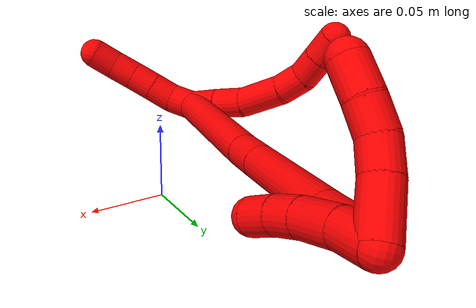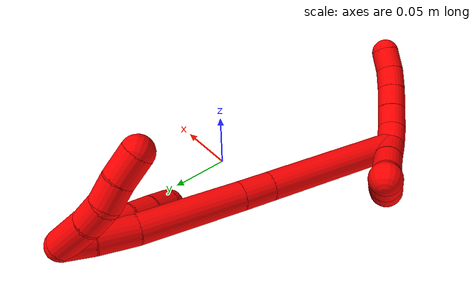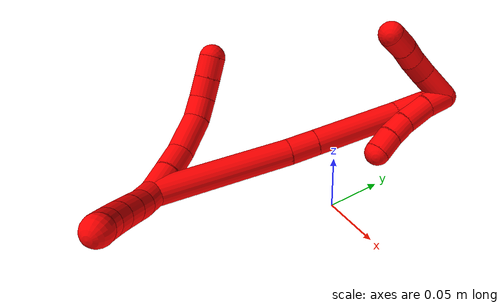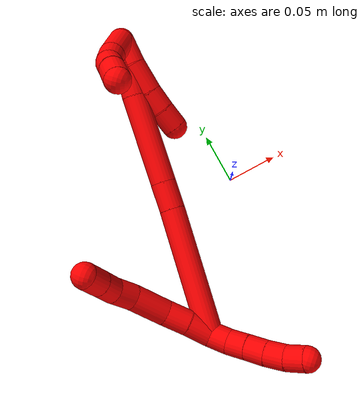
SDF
<sdf version="1.7">
 <world name="default">
  <model name="photoneo_s_sensor">
   <static>1</static>
   <pose>0 0 2 1.57079 1.57079 3.14159</pose>
   <link name="link">
    <inertial><mass>0.1</mass></inertial>
    <sensor name="sensor" type="depth">
     <update_rate>30</update_rate>
     <camera>
      <horizontal_fov>1.22</horizontal_fov>
      <image><width>1920</width><height>1200</height><format>B8G8R8</format></image>
      <clip><near>0.1</near><far>4</far></clip>
      <depth_camera><output>points</output></depth_camera>
     </camera>
     <plugin name="camera_plugin" filename="libgazebo_ros_depth_camera.so">
      <baseline>0.2</baseline>
      <alwaysOn>1</alwaysOn>
      <updateRate>0.0</updateRate>
      <cameraName>camera_ir</cameraName>
      <imageTopicName>/camera/color/image_raw</imageTopicName>
      <cameraInfoTopicName>/camera/color/camera_info</cameraInfoTopicName>
      <depthImageTopicName>/camera/depth/image_raw</depthImageTopicName>
      <depthImageCameraInfoTopicName>/camera/depth/camera_info</depthImageCameraInfoTopicName>
      <pointCloudTopicName>/camera/depth/points</pointCloudTopicName>
      <frameName>fr_optical</frameName>
      <pointCloudCutoff>0.1</pointCloudCutoff>
      <pointCloudCutoffMax>2.0</pointCloudCutoffMax>
      <distortionK1>0</distortionK1>
      <distortionK2>0</distortionK2>
      <distortionK3>0</distortionK3>
      <distortionT1>0</distortionT1>
      <distortionT2>0</distortionT2>
      <CxPrime>0</CxPrime>
      <Cx>0</Cx>
      <Cy>0</Cy>
      <focalLength>0</focalLength>
      <hackBaseline>0</hackBaseline>
     </plugin>
    </sensor>
   </link>
  </model>
  <model name="bin">
   <static>1</static>
   <link name="bottom">
    <collision name="collision-bottom">
     <pose>0 0 -0.01 0 -0 0</pose>
     <geometry><box><size>0.8 0.6 0.02</size></box></geometry>
     <surface>
      <friction><ode><mu>100</mu><mu2>100</mu2></ode></friction>
      <contact><collide_bitmask>65535</collide_bitmask></contact>
     </surface>
    </collision>
   </link>
   <link name="west_wall">
    <collision name="collision-west_wall">
     <pose>-0.41 0 0.1 0 -0 0</pose>
     <geometry><box><size>0.02 0.6 0.2</size></box></geometry>
     <surface>
      <friction><ode><mu>100</mu><mu2>100</mu2></ode></friction>
      <contact><collide_bitmask>65535</collide_bitmask></contact>
     </surface>
    </collision>
   </link>
   <link name="east_wall">
    <collision name="collision-east_wall">
     <pose>0.41 0 0.1 0 -0 0</pose>
     <geometry><box><size>0.02 0.6 0.2</size></box></geometry>
     <surface>
      <friction><ode><mu>100</mu><mu2>100</mu2></ode></friction>
      <contact><collide_bitmask>65535</collide_bitmask></contact>
     </surface>
    </collision>
   </link>
   <link name="south_wall">
    <collision name="collision-south_wall">
     <pose>0 -0.31 0.1 0 -0 0</pose>
     <geometry><box><size>0.8 0.02 0.2</size></box></geometry>
     <surface>
      <friction><ode><mu>100</mu><mu2>100</mu2></ode></friction>
      <contact><collide_bitmask>65535</collide_bitmask></contact>
     </surface>
    </collision>
   </link>
   <link name="north_wall">
    <collision name="collision-north_wall">
     <pose>0 0.31 0.1 0 -0 0</pose>
     <geometry><box><size>0.8 0.02 0.2</size></box></geometry>
     <surface>
      <friction><ode><mu>100</mu><mu2>100</mu2></ode></friction>
      <contact><collide_bitmask>65535</collide_bitmask></contact>
     </surface>
    </collision>
   </link>
  </model>
  <model name="2">
   <static>0</static>
   <link name="2">
    <collision name="collision-cylinder-e_1_2_8">
     <pose>-0.004368 0.002054 -0.011496 -2.96483 -0.357926 2.23061</pose>
     <geometry><cylinder><radius>0.0125</radius><length>0.024937</length></cylinder></geometry>
     <surface>
      <friction><ode><mu>1.16</mu><mu2>1.16</mu2><slip1>0</slip1><slip2>0</slip2></ode></friction>
      <contact><ode><kp>1e+06</kp><kd>1</kd><max_vel>0</max_vel><min_depth>0.001</min_depth></ode></contact>
     </surface>
    </collision>
    <visual name="visual-cylinder-e_1_2_8">
     <pose>-0.004368 0.002054 -0.011496 -2.96483 -0.357926 2.23061</pose>
     <geometry><cylinder><radius>0.0125</radius><length>0.024937</length></cylinder></geometry>
     <material><ambient>1 0 0 1</ambient></material>
    </visual>
    <collision name="collision-cylinder-e_2_8_9">
     <pose>-0.012511 0.005472 -0.03444 -3.02288 -0.316395 2.42841</pose>
     <geometry><cylinder><radius>0.0125</radius><length>0.024262</length></cylinder></geometry>
     <surface>
      <friction><ode><mu>1.16</mu><mu2>1.16</mu2><slip1>0</slip1><slip2>0</slip2></ode></friction>
      <contact><ode><kp>1e+06</kp><kd>1</kd><max_vel>0</max_vel><min_depth>0.001</min_depth></ode></contact>
     </surface>
    </collision>
    <visual name="visual-cylinder-e_2_8_9">
     <pose>-0.012511 0.005472 -0.03444 -3.02288 -0.316395 2.42841</pose>
     <geometry><cylinder><radius>0.0125</radius><length>0.024262</length></cylinder></geometry>
     <material><ambient>1 0 0 1</ambient></material>
    </visual>
    <collision name="collision-cylinder-e_3_9_10">
     <pose>-0.026316 0.010106 -0.061061 -2.92948 -0.573725 2.44895</pose>
     <geometry><cylinder><radius>0.0125</radius><length>0.036961</length></cylinder></geometry>
     <surface>
      <friction><ode><mu>1.16</mu><mu2>1.16</mu2><slip1>0</slip1><slip2>0</slip2></ode></friction>
      <contact><ode><kp>1e+06</kp><kd>1</kd><max_vel>0</max_vel><min_depth>0.001</min_depth></ode></contact>
     </surface>
    </collision>
    <visual name="visual-cylinder-e_3_9_10">
     <pose>-0.026316 0.010106 -0.061061 -2.92948 -0.573725 2.44895</pose>
     <geometry><cylinder><radius>0.0125</radius><length>0.036961</length></cylinder></geometry>
     <material><ambient>1 0 0 1</ambient></material>
    </visual>
    <collision name="collision-cylinder-e_4_10_11">
     <pose>-0.044122 0.014516 -0.083958 -2.99473 -0.783382 2.78908</pose>
     <geometry><cylinder><radius>0.0125</radius><length>0.022037</length></cylinder></geometry>
     <surface>
      <friction><ode><mu>1.16</mu><mu2>1.16</mu2><slip1>0</slip1><slip2>0</slip2></ode></friction>
      <contact><ode><kp>1e+06</kp><kd>1</kd><max_vel>0</max_vel><min_depth>0.001</min_depth></ode></contact>
     </surface>
    </collision>
    <visual name="visual-cylinder-e_4_10_11">
     <pose>-0.044122 0.014516 -0.083958 -2.99473 -0.783382 2.78908</pose>
     <geometry><cylinder><radius>0.0125</radius><length>0.022037</length></cylinder></geometry>
     <material><ambient>1 0 0 1</ambient></material>
    </visual>
    <collision name="collision-cylinder-e_5_11_12">
     <pose>-0.060901 0.018113 -0.096164 -2.64056 -1.05443 2.31336</pose>
     <geometry><cylinder><radius>0.0125</radius><length>0.020706</length></cylinder></geometry>
     <surface>
      <friction><ode><mu>1.16</mu><mu2>1.16</mu2><slip1>0</slip1><slip2>0</slip2></ode></friction>
      <contact><ode><kp>1e+06</kp><kd>1</kd><max_vel>0</max_vel><min_depth>0.001</min_depth></ode></contact>
     </surface>
    </collision>
    <visual name="visual-cylinder-e_5_11_12">
     <pose>-0.060901 0.018113 -0.096164 -2.64056 -1.05443 2.31336</pose>
     <geometry><cylinder><radius>0.0125</radius><length>0.020706</length></cylinder></geometry>
     <material><ambient>1 0 0 1</ambient></material>
    </visual>
    <collision name="collision-cylinder-e_6_12_6">
     <pose>-0.079122 0.022964 -0.105181 -2.65549 -1.0632 2.34356</pose>
     <geometry><cylinder><radius>0.0125</radius><length>0.021097</length></cylinder></geometry>
     <surface>
      <friction><ode><mu>1.16</mu><mu2>1.16</mu2><slip1>0</slip1><slip2>0</slip2></ode></friction>
      <contact><ode><kp>1e+06</kp><kd>1</kd><max_vel>0</max_vel><min_depth>0.001</min_depth></ode></contact>
     </surface>
    </collision>
    <visual name="visual-cylinder-e_6_12_6">
     <pose>-0.079122 0.022964 -0.105181 -2.65549 -1.0632 2.34356</pose>
     <geometry><cylinder><radius>0.0125</radius><length>0.021097</length></cylinder></geometry>
     <material><ambient>1 0 0 1</ambient></material>
    </visual>
    <collision name="collision-cylinder-e_1_2_13">
     <pose>-0.000752 -0.000183 0.00997 0.0184 -0.075261 -0.000693</pose>
     <geometry><cylinder><radius>0.0125</radius><length>0.02</length></cylinder></geometry>
     <surface>
      <friction><ode><mu>1.16</mu><mu2>1.16</mu2><slip1>0</slip1><slip2>0</slip2></ode></friction>
      <contact><ode><kp>1e+06</kp><kd>1</kd><max_vel>0</max_vel><min_depth>0.001</min_depth></ode></contact>
     </surface>
    </collision>
    <visual name="visual-cylinder-e_1_2_13">
     <pose>-0.000752 -0.000183 0.00997 0.0184 -0.075261 -0.000693</pose>
     <geometry><cylinder><radius>0.0125</radius><length>0.02</length></cylinder></geometry>
     <material><ambient>1 0 0 1</ambient></material>
    </visual>
    <collision name="collision-cylinder-e_2_13_14">
     <pose>-0.004593 0.000864 0.029371 -0.129783 -0.314107 0.02058</pose>
     <geometry><cylinder><radius>0.0125</radius><length>0.02</length></cylinder></geometry>
     <surface>
      <friction><ode><mu>1.16</mu><mu2>1.16</mu2><slip1>0</slip1><slip2>0</slip2></ode></friction>
      <contact><ode><kp>1e+06</kp><kd>1</kd><max_vel>0</max_vel><min_depth>0.001</min_depth></ode></contact>
     </surface>
    </collision>
    <visual name="visual-cylinder-e_2_13_14">
     <pose>-0.004593 0.000864 0.029371 -0.129783 -0.314107 0.02058</pose>
     <geometry><cylinder><radius>0.0125</radius><length>0.02</length></cylinder></geometry>
     <material><ambient>1 0 0 1</ambient></material>
    </visual>
    <collision name="collision-cylinder-e_3_14_15">
     <pose>-0.01062 0.003162 0.048301 -0.111829 -0.298065 0.016808</pose>
     <geometry><cylinder><radius>0.0125</radius><length>0.02</length></cylinder></geometry>
     <surface>
      <friction><ode><mu>1.16</mu><mu2>1.16</mu2><slip1>0</slip1><slip2>0</slip2></ode></friction>
      <contact><ode><kp>1e+06</kp><kd>1</kd><max_vel>0</max_vel><min_depth>0.001</min_depth></ode></contact>
     </surface>
    </collision>
    <visual name="visual-cylinder-e_3_14_15">
     <pose>-0.01062 0.003162 0.048301 -0.111829 -0.298065 0.016808</pose>
     <geometry><cylinder><radius>0.0125</radius><length>0.02</length></cylinder></geometry>
     <material><ambient>1 0 0 1</ambient></material>
    </visual>
    <collision name="collision-cylinder-e_4_15_16">
     <pose>-0.016589 0.006049 0.067154 -0.192292 -0.308108 0.02995</pose>
     <geometry><cylinder><radius>0.0125</radius><length>0.02</length></cylinder></geometry>
     <surface>
      <friction><ode><mu>1.16</mu><mu2>1.16</mu2><slip1>0</slip1><slip2>0</slip2></ode></friction>
      <contact><ode><kp>1e+06</kp><kd>1</kd><max_vel>0</max_vel><min_depth>0.001</min_depth></ode></contact>
     </surface>
    </collision>
    <visual name="visual-cylinder-e_4_15_16">
     <pose>-0.016589 0.006049 0.067154 -0.192292 -0.308108 0.02995</pose>
     <geometry><cylinder><radius>0.0125</radius><length>0.02</length></cylinder></geometry>
     <material><ambient>1 0 0 1</ambient></material>
    </visual>
    <collision name="collision-cylinder-e_5_16_5">
     <pose>-0.023268 0.011293 0.085167 -0.376351 -0.373285 0.07189</pose>
     <geometry><cylinder><radius>0.0125</radius><length>0.02</length></cylinder></geometry>
     <surface>
      <friction><ode><mu>1.16</mu><mu2>1.16</mu2><slip1>0</slip1><slip2>0</slip2></ode></friction>
      <contact><ode><kp>1e+06</kp><kd>1</kd><max_vel>0</max_vel><min_depth>0.001</min_depth></ode></contact>
     </surface>
    </collision>
    <visual name="visual-cylinder-e_5_16_5">
     <pose>-0.023268 0.011293 0.085167 -0.376351 -0.373285 0.07189</pose>
     <geometry><cylinder><radius>0.0125</radius><length>0.02</length></cylinder></geometry>
     <material><ambient>1 0 0 1</ambient></material>
    </visual>
    <collision name="collision-cylinder-e_1_2_17">
     <pose>-0.002105 0.050962 -0.037029 -2.19915 -0.033404 0.065544</pose>
     <geometry><cylinder><radius>0.0125</radius><length>0.126057</length></cylinder></geometry>
     <surface>
      <friction><ode><mu>1.16</mu><mu2>1.16</mu2><slip1>0</slip1><slip2>0</slip2></ode></friction>
      <contact><ode><kp>1e+06</kp><kd>1</kd><max_vel>0</max_vel><min_depth>0.001</min_depth></ode></contact>
     </surface>
    </collision>
    <visual name="visual-cylinder-e_1_2_17">
     <pose>-0.002105 0.050962 -0.037029 -2.19915 -0.033404 0.065544</pose>
     <geometry><cylinder><radius>0.0125</radius><length>0.126057</length></cylinder></geometry>
     <material><ambient>1 0 0 1</ambient></material>
    </visual>
    <collision name="collision-cylinder-e_2_17_18">
     <pose>-0.005199 0.113013 -0.082455 -2.21895 -0.070943 0.142532</pose>
     <geometry><cylinder><radius>0.0125</radius><length>0.027891</length></cylinder></geometry>
     <surface>
      <friction><ode><mu>1.16</mu><mu2>1.16</mu2><slip1>0</slip1><slip2>0</slip2></ode></friction>
      <contact><ode><kp>1e+06</kp><kd>1</kd><max_vel>0</max_vel><min_depth>0.001</min_depth></ode></contact>
     </surface>
    </collision>
    <visual name="visual-cylinder-e_2_17_18">
     <pose>-0.005199 0.113013 -0.082455 -2.21895 -0.070943 0.142532</pose>
     <geometry><cylinder><radius>0.0125</radius><length>0.027891</length></cylinder></geometry>
     <material><ambient>1 0 0 1</ambient></material>
    </visual>
    <collision name="collision-cylinder-e_3_18_19">
     <pose>-0.009689 0.159839 -0.117556 -2.2125 -0.078337 0.156085</pose>
     <geometry><cylinder><radius>0.0125</radius><length>0.089498</length></cylinder></geometry>
     <surface>
      <friction><ode><mu>1.16</mu><mu2>1.16</mu2><slip1>0</slip1><slip2>0</slip2></ode></friction>
      <contact><ode><kp>1e+06</kp><kd>1</kd><max_vel>0</max_vel><min_depth>0.001</min_depth></ode></contact>
     </surface>
    </collision>
    <visual name="visual-cylinder-e_3_18_19">
     <pose>-0.009689 0.159839 -0.117556 -2.2125 -0.078337 0.156085</pose>
     <geometry><cylinder><radius>0.0125</radius><length>0.089498</length></cylinder></geometry>
     <material><ambient>1 0 0 1</ambient></material>
    </visual>
    <collision name="collision-cylinder-e_4_19_20">
     <pose>-0.015372 0.20932 -0.153229 -2.14902 -0.132143 0.243185</pose>
     <geometry><cylinder><radius>0.0125</radius><length>0.033112</length></cylinder></geometry>
     <surface>
      <friction><ode><mu>1.16</mu><mu2>1.16</mu2><slip1>0</slip1><slip2>0</slip2></ode></friction>
      <contact><ode><kp>1e+06</kp><kd>1</kd><max_vel>0</max_vel><min_depth>0.001</min_depth></ode></contact>
     </surface>
    </collision>
    <visual name="visual-cylinder-e_4_19_20">
     <pose>-0.015372 0.20932 -0.153229 -2.14902 -0.132143 0.243185</pose>
     <geometry><cylinder><radius>0.0125</radius><length>0.033112</length></cylinder></geometry>
     <material><ambient>1 0 0 1</ambient></material>
    </visual>
    <collision name="collision-cylinder-e_5_20_1">
     <pose>-0.019087 0.233274 -0.167746 -2.06857 -0.131218 0.220071</pose>
     <geometry><cylinder><radius>0.0125</radius><length>0.023441</length></cylinder></geometry>
     <surface>
      <friction><ode><mu>1.16</mu><mu2>1.16</mu2><slip1>0</slip1><slip2>0</slip2></ode></friction>
      <contact><ode><kp>1e+06</kp><kd>1</kd><max_vel>0</max_vel><min_depth>0.001</min_depth></ode></contact>
     </surface>
    </collision>
    <visual name="visual-cylinder-e_5_20_1">
     <pose>-0.019087 0.233274 -0.167746 -2.06857 -0.131218 0.220071</pose>
     <geometry><cylinder><radius>0.0125</radius><length>0.023441</length></cylinder></geometry>
     <material><ambient>1 0 0 1</ambient></material>
    </visual>
    <collision name="collision-cylinder-e_1_1_21">
     <pose>-0.018821 0.233904 -0.164267 0.81506 0.135873 0.05873</pose>
     <geometry><cylinder><radius>0.0125</radius><length>0.026572</length></cylinder></geometry>
     <surface>
      <friction><ode><mu>1.16</mu><mu2>1.16</mu2><slip1>0</slip1><slip2>0</slip2></ode></friction>
      <contact><ode><kp>1e+06</kp><kd>1</kd><max_vel>0</max_vel><min_depth>0.001</min_depth></ode></contact>
     </surface>
    </collision>
    <visual name="visual-cylinder-e_1_1_21">
     <pose>-0.018821 0.233904 -0.164267 0.81506 0.135873 0.05873</pose>
     <geometry><cylinder><radius>0.0125</radius><length>0.026572</length></cylinder></geometry>
     <material><ambient>1 0 0 1</ambient></material>
    </visual>
    <collision name="collision-cylinder-e_2_21_22">
     <pose>-0.012827 0.214424 -0.144305 0.735803 0.277069 0.107382</pose>
     <geometry><cylinder><radius>0.0125</radius><length>0.03067</length></cylinder></geometry>
     <surface>
      <friction><ode><mu>1.16</mu><mu2>1.16</mu2><slip1>0</slip1><slip2>0</slip2></ode></friction>
      <contact><ode><kp>1e+06</kp><kd>1</kd><max_vel>0</max_vel><min_depth>0.001</min_depth></ode></contact>
     </surface>
    </collision>
    <visual name="visual-cylinder-e_2_21_22">
     <pose>-0.012827 0.214424 -0.144305 0.735803 0.277069 0.107382</pose>
     <geometry><cylinder><radius>0.0125</radius><length>0.03067</length></cylinder></geometry>
     <material><ambient>1 0 0 1</ambient></material>
    </visual>
    <collision name="collision-cylinder-e_3_22_23">
     <pose>-0.004749 0.198494 -0.125603 0.660179 0.37604 0.130196</pose>
     <geometry><cylinder><radius>0.0125</radius><length>0.021146</length></cylinder></geometry>
     <surface>
      <friction><ode><mu>1.16</mu><mu2>1.16</mu2><slip1>0</slip1><slip2>0</slip2></ode></friction>
      <contact><ode><kp>1e+06</kp><kd>1</kd><max_vel>0</max_vel><min_depth>0.001</min_depth></ode></contact>
     </surface>
    </collision>
    <visual name="visual-cylinder-e_3_22_23">
     <pose>-0.004749 0.198494 -0.125603 0.660179 0.37604 0.130196</pose>
     <geometry><cylinder><radius>0.0125</radius><length>0.021146</length></cylinder></geometry>
     <material><ambient>1 0 0 1</ambient></material>
    </visual>
    <collision name="collision-cylinder-e_4_23_4">
     <pose>0.004105 0.186891 -0.110024 0.619536 0.478075 0.155686</pose>
     <geometry><cylinder><radius>0.0125</radius><length>0.021613</length></cylinder></geometry>
     <surface>
      <friction><ode><mu>1.16</mu><mu2>1.16</mu2><slip1>0</slip1><slip2>0</slip2></ode></friction>
      <contact><ode><kp>1e+06</kp><kd>1</kd><max_vel>0</max_vel><min_depth>0.001</min_depth></ode></contact>
     </surface>
    </collision>
    <visual name="visual-cylinder-e_4_23_4">
     <pose>0.004105 0.186891 -0.110024 0.619536 0.478075 0.155686</pose>
     <geometry><cylinder><radius>0.0125</radius><length>0.021613</length></cylinder></geometry>
     <material><ambient>1 0 0 1</ambient></material>
    </visual>
    <collision name="collision-cylinder-e_1_1_24">
     <pose>-0.034308 0.233394 -0.170158 1.2694 -0.913391 -0.694284</pose>
     <geometry><cylinder><radius>0.0125</radius><length>0.034582</length></cylinder></geometry>
     <surface>
      <friction><ode><mu>1.16</mu><mu2>1.16</mu2><slip1>0</slip1><slip2>0</slip2></ode></friction>
      <contact><ode><kp>1e+06</kp><kd>1</kd><max_vel>0</max_vel><min_depth>0.001</min_depth></ode></contact>
     </surface>
    </collision>
    <visual name="visual-cylinder-e_1_1_24">
     <pose>-0.034308 0.233394 -0.170158 1.2694 -0.913391 -0.694284</pose>
     <geometry><cylinder><radius>0.0125</radius><length>0.034582</length></cylinder></geometry>
     <material><ambient>1 0 0 1</ambient></material>
    </visual>
    <collision name="collision-cylinder-e_2_24_25">
     <pose>-0.05641 0.217959 -0.163727 1.01845 -0.929788 -0.546095</pose>
     <geometry><cylinder><radius>0.0125</radius><length>0.020999</length></cylinder></geometry>
     <surface>
      <friction><ode><mu>1.16</mu><mu2>1.16</mu2><slip1>0</slip1><slip2>0</slip2></ode></friction>
      <contact><ode><kp>1e+06</kp><kd>1</kd><max_vel>0</max_vel><min_depth>0.001</min_depth></ode></contact>
     </surface>
    </collision>
    <visual name="visual-cylinder-e_2_24_25">
     <pose>-0.05641 0.217959 -0.163727 1.01845 -0.929788 -0.546095</pose>
     <geometry><cylinder><radius>0.0125</radius><length>0.020999</length></cylinder></geometry>
     <material><ambient>1 0 0 1</ambient></material>
    </visual>
    <collision name="collision-cylinder-e_3_25_26">
     <pose>-0.072693 0.209183 -0.154692 0.538809 -0.866274 -0.253992</pose>
     <geometry><cylinder><radius>0.0125</radius><length>0.020652</length></cylinder></geometry>
     <surface>
      <friction><ode><mu>1.16</mu><mu2>1.16</mu2><slip1>0</slip1><slip2>0</slip2></ode></friction>
      <contact><ode><kp>1e+06</kp><kd>1</kd><max_vel>0</max_vel><min_depth>0.001</min_depth></ode></contact>
     </surface>
    </collision>
    <visual name="visual-cylinder-e_3_25_26">
     <pose>-0.072693 0.209183 -0.154692 0.538809 -0.866274 -0.253992</pose>
     <geometry><cylinder><radius>0.0125</radius><length>0.020652</length></cylinder></geometry>
     <material><ambient>1 0 0 1</ambient></material>
    </visual>
    <collision name="collision-cylinder-e_4_26_3">
     <pose>-0.088825 0.200779 -0.142009 0.621533 -0.768996 -0.258469</pose>
     <geometry><cylinder><radius>0.0125</radius><length>0.023767</length></cylinder></geometry>
     <surface>
      <friction><ode><mu>1.16</mu><mu2>1.16</mu2><slip1>0</slip1><slip2>0</slip2></ode></friction>
      <contact><ode><kp>1e+06</kp><kd>1</kd><max_vel>0</max_vel><min_depth>0.001</min_depth></ode></contact>
     </surface>
    </collision>
    <visual name="visual-cylinder-e_4_26_3">
     <pose>-0.088825 0.200779 -0.142009 0.621533 -0.768996 -0.258469</pose>
     <geometry><cylinder><radius>0.0125</radius><length>0.023767</length></cylinder></geometry>
     <material><ambient>1 0 0 1</ambient></material>
    </visual>
    <collision name="collision-sphere-3">
     <pose>-0.097089 0.195806 -0.135067 0 -0 0</pose>
     <geometry><sphere><radius>0.0125</radius></sphere></geometry>
     <surface>
      <friction><ode><mu>1.16</mu><mu2>1.16</mu2><slip1>0</slip1><slip2>0</slip2></ode></friction>
      <contact><ode><kp>1e+06</kp><kd>1</kd><max_vel>0</max_vel><min_depth>0.001</min_depth></ode></contact>
     </surface>
    </collision>
    <visual name="visual-sphere-3">
     <pose>-0.097089 0.195806 -0.135067 0 -0 0</pose>
     <geometry><sphere><radius>0.0125</radius></sphere></geometry>
     <material><ambient>1 0 0 1</ambient></material>
    </visual>
    <collision name="collision-sphere-26">
     <pose>-0.080561 0.205751 -0.148952 0 -0 0</pose>
     <geometry><sphere><radius>0.0125</radius></sphere></geometry>
     <surface>
      <friction><ode><mu>1.16</mu><mu2>1.16</mu2><slip1>0</slip1><slip2>0</slip2></ode></friction>
      <contact><ode><kp>1e+06</kp><kd>1</kd><max_vel>0</max_vel><min_depth>0.001</min_depth></ode></contact>
     </surface>
    </collision>
    <visual name="visual-sphere-26">
     <pose>-0.080561 0.205751 -0.148952 0 -0 0</pose>
     <geometry><sphere><radius>0.0125</radius></sphere></geometry>
     <material><ambient>1 0 0 1</ambient></material>
    </visual>
    <collision name="collision-sphere-25">
     <pose>-0.064826 0.212614 -0.160433 0 -0 0</pose>
     <geometry><sphere><radius>0.0125</radius></sphere></geometry>
     <surface>
      <friction><ode><mu>1.16</mu><mu2>1.16</mu2><slip1>0</slip1><slip2>0</slip2></ode></friction>
      <contact><ode><kp>1e+06</kp><kd>1</kd><max_vel>0</max_vel><min_depth>0.001</min_depth></ode></contact>
     </surface>
    </collision>
    <visual name="visual-sphere-25">
     <pose>-0.064826 0.212614 -0.160433 0 -0 0</pose>
     <geometry><sphere><radius>0.0125</radius></sphere></geometry>
     <material><ambient>1 0 0 1</ambient></material>
    </visual>
    <collision name="collision-sphere-24">
     <pose>-0.047995 0.223304 -0.167021 0 -0 0</pose>
     <geometry><sphere><radius>0.0125</radius></sphere></geometry>
     <surface>
      <friction><ode><mu>1.16</mu><mu2>1.16</mu2><slip1>0</slip1><slip2>0</slip2></ode></friction>
      <contact><ode><kp>1e+06</kp><kd>1</kd><max_vel>0</max_vel><min_depth>0.001</min_depth></ode></contact>
     </surface>
    </collision>
    <visual name="visual-sphere-24">
     <pose>-0.047995 0.223304 -0.167021 0 -0 0</pose>
     <geometry><sphere><radius>0.0125</radius></sphere></geometry>
     <material><ambient>1 0 0 1</ambient></material>
    </visual>
    <collision name="collision-sphere-4">
     <pose>0.009077 0.18132 -0.102212 0 -0 0</pose>
     <geometry><sphere><radius>0.0125</radius></sphere></geometry>
     <surface>
      <friction><ode><mu>1.16</mu><mu2>1.16</mu2><slip1>0</slip1><slip2>0</slip2></ode></friction>
      <contact><ode><kp>1e+06</kp><kd>1</kd><max_vel>0</max_vel><min_depth>0.001</min_depth></ode></contact>
     </surface>
    </collision>
    <visual name="visual-sphere-4">
     <pose>0.009077 0.18132 -0.102212 0 -0 0</pose>
     <geometry><sphere><radius>0.0125</radius></sphere></geometry>
     <material><ambient>1 0 0 1</ambient></material>
    </visual>
    <collision name="collision-sphere-23">
     <pose>-0.000867 0.192463 -0.117835 0 -0 0</pose>
     <geometry><sphere><radius>0.0125</radius></sphere></geometry>
     <surface>
      <friction><ode><mu>1.16</mu><mu2>1.16</mu2><slip1>0</slip1><slip2>0</slip2></ode></friction>
      <contact><ode><kp>1e+06</kp><kd>1</kd><max_vel>0</max_vel><min_depth>0.001</min_depth></ode></contact>
     </surface>
    </collision>
    <visual name="visual-sphere-23">
     <pose>-0.000867 0.192463 -0.117835 0 -0 0</pose>
     <geometry><sphere><radius>0.0125</radius></sphere></geometry>
     <material><ambient>1 0 0 1</ambient></material>
    </visual>
    <collision name="collision-sphere-22">
     <pose>-0.008632 0.204524 -0.133371 0 -0 0</pose>
     <geometry><sphere><radius>0.0125</radius></sphere></geometry>
     <surface>
      <friction><ode><mu>1.16</mu><mu2>1.16</mu2><slip1>0</slip1><slip2>0</slip2></ode></friction>
      <contact><ode><kp>1e+06</kp><kd>1</kd><max_vel>0</max_vel><min_depth>0.001</min_depth></ode></contact>
     </surface>
    </collision>
    <visual name="visual-sphere-22">
     <pose>-0.008632 0.204524 -0.133371 0 -0 0</pose>
     <geometry><sphere><radius>0.0125</radius></sphere></geometry>
     <material><ambient>1 0 0 1</ambient></material>
    </visual>
    <collision name="collision-sphere-21">
     <pose>-0.017021 0.224324 -0.155239 0 -0 0</pose>
     <geometry><sphere><radius>0.0125</radius></sphere></geometry>
     <surface>
      <friction><ode><mu>1.16</mu><mu2>1.16</mu2><slip1>0</slip1><slip2>0</slip2></ode></friction>
      <contact><ode><kp>1e+06</kp><kd>1</kd><max_vel>0</max_vel><min_depth>0.001</min_depth></ode></contact>
     </surface>
    </collision>
    <visual name="visual-sphere-21">
     <pose>-0.017021 0.224324 -0.155239 0 -0 0</pose>
     <geometry><sphere><radius>0.0125</radius></sphere></geometry>
     <material><ambient>1 0 0 1</ambient></material>
    </visual>
    <collision name="collision-sphere-1">
     <pose>-0.020621 0.243484 -0.173294 0 -0 0</pose>
     <geometry><sphere><radius>0.0125</radius></sphere></geometry>
     <surface>
      <friction><ode><mu>1.16</mu><mu2>1.16</mu2><slip1>0</slip1><slip2>0</slip2></ode></friction>
      <contact><ode><kp>1e+06</kp><kd>1</kd><max_vel>0</max_vel><min_depth>0.001</min_depth></ode></contact>
     </surface>
    </collision>
    <visual name="visual-sphere-1">
     <pose>-0.020621 0.243484 -0.173294 0 -0 0</pose>
     <geometry><sphere><radius>0.0125</radius></sphere></geometry>
     <material><ambient>1 0 0 1</ambient></material>
    </visual>
    <collision name="collision-sphere-12">
     <pose>-0.069904 0.020568 -0.100647 0 -0 0</pose>
     <geometry><sphere><radius>0.0125</radius></sphere></geometry>
     <surface>
      <friction><ode><mu>1.16</mu><mu2>1.16</mu2><slip1>0</slip1><slip2>0</slip2></ode></friction>
      <contact><ode><kp>1e+06</kp><kd>1</kd><max_vel>0</max_vel><min_depth>0.001</min_depth></ode></contact>
     </surface>
    </collision>
    <visual name="visual-sphere-12">
     <pose>-0.069904 0.020568 -0.100647 0 -0 0</pose>
     <geometry><sphere><radius>0.0125</radius></sphere></geometry>
     <material><ambient>1 0 0 1</ambient></material>
    </visual>
    <collision name="collision-sphere-11">
     <pose>-0.051897 0.015658 -0.091681 0 -0 0</pose>
     <geometry><sphere><radius>0.0125</radius></sphere></geometry>
     <surface>
      <friction><ode><mu>1.16</mu><mu2>1.16</mu2><slip1>0</slip1><slip2>0</slip2></ode></friction>
      <contact><ode><kp>1e+06</kp><kd>1</kd><max_vel>0</max_vel><min_depth>0.001</min_depth></ode></contact>
     </surface>
    </collision>
    <visual name="visual-sphere-11">
     <pose>-0.051897 0.015658 -0.091681 0 -0 0</pose>
     <geometry><sphere><radius>0.0125</radius></sphere></geometry>
     <material><ambient>1 0 0 1</ambient></material>
    </visual>
    <collision name="collision-sphere-10">
     <pose>-0.036346 0.013373 -0.076235 0 -0 0</pose>
     <geometry><sphere><radius>0.0125</radius></sphere></geometry>
     <surface>
      <friction><ode><mu>1.16</mu><mu2>1.16</mu2><slip1>0</slip1><slip2>0</slip2></ode></friction>
      <contact><ode><kp>1e+06</kp><kd>1</kd><max_vel>0</max_vel><min_depth>0.001</min_depth></ode></contact>
     </surface>
    </collision>
    <visual name="visual-sphere-10">
     <pose>-0.036346 0.013373 -0.076235 0 -0 0</pose>
     <geometry><sphere><radius>0.0125</radius></sphere></geometry>
     <material><ambient>1 0 0 1</ambient></material>
    </visual>
    <collision name="collision-sphere-9">
     <pose>-0.016285 0.006838 -0.045887 0 -0 0</pose>
     <geometry><sphere><radius>0.0125</radius></sphere></geometry>
     <surface>
      <friction><ode><mu>1.16</mu><mu2>1.16</mu2><slip1>0</slip1><slip2>0</slip2></ode></friction>
      <contact><ode><kp>1e+06</kp><kd>1</kd><max_vel>0</max_vel><min_depth>0.001</min_depth></ode></contact>
     </surface>
    </collision>
    <visual name="visual-sphere-9">
     <pose>-0.016285 0.006838 -0.045887 0 -0 0</pose>
     <geometry><sphere><radius>0.0125</radius></sphere></geometry>
     <material><ambient>1 0 0 1</ambient></material>
    </visual>
    <collision name="collision-sphere-2">
     <geometry><sphere><radius>0.0125</radius></sphere></geometry>
     <surface>
      <friction><ode><mu>1.16</mu><mu2>1.16</mu2><slip1>0</slip1><slip2>0</slip2></ode></friction>
      <contact><ode><kp>1e+06</kp><kd>1</kd><max_vel>0</max_vel><min_depth>0.001</min_depth></ode></contact>
     </surface>
    </collision>
    <visual name="visual-sphere-2">
     <geometry><sphere><radius>0.0125</radius></sphere></geometry>
     <material><ambient>1 0 0 1</ambient></material>
    </visual>
    <collision name="collision-sphere-19">
     <pose>-0.013191 0.195577 -0.144259 0 -0 0</pose>
     <geometry><sphere><radius>0.0125</radius></sphere></geometry>
     <surface>
      <friction><ode><mu>1.16</mu><mu2>1.16</mu2><slip1>0</slip1><slip2>0</slip2></ode></friction>
      <contact><ode><kp>1e+06</kp><kd>1</kd><max_vel>0</max_vel><min_depth>0.001</min_depth></ode></contact>
     </surface>
    </collision>
    <visual name="visual-sphere-19">
     <pose>-0.013191 0.195577 -0.144259 0 -0 0</pose>
     <geometry><sphere><radius>0.0125</radius></sphere></geometry>
     <material><ambient>1 0 0 1</ambient></material>
    </visual>
    <collision name="collision-sphere-8">
     <pose>-0.008736 0.004107 -0.022992 0 -0 0</pose>
     <geometry><sphere><radius>0.0125</radius></sphere></geometry>
     <surface>
      <friction><ode><mu>1.16</mu><mu2>1.16</mu2><slip1>0</slip1><slip2>0</slip2></ode></friction>
      <contact><ode><kp>1e+06</kp><kd>1</kd><max_vel>0</max_vel><min_depth>0.001</min_depth></ode></contact>
     </surface>
    </collision>
    <visual name="visual-sphere-8">
     <pose>-0.008736 0.004107 -0.022992 0 -0 0</pose>
     <geometry><sphere><radius>0.0125</radius></sphere></geometry>
     <material><ambient>1 0 0 1</ambient></material>
    </visual>
    <collision name="collision-sphere-6">
     <pose>-0.088341 0.025359 -0.109714 0 -0 0</pose>
     <geometry><sphere><radius>0.0125</radius></sphere></geometry>
     <surface>
      <friction><ode><mu>1.16</mu><mu2>1.16</mu2><slip1>0</slip1><slip2>0</slip2></ode></friction>
      <contact><ode><kp>1e+06</kp><kd>1</kd><max_vel>0</max_vel><min_depth>0.001</min_depth></ode></contact>
     </surface>
    </collision>
    <visual name="visual-sphere-6">
     <pose>-0.088341 0.025359 -0.109714 0 -0 0</pose>
     <geometry><sphere><radius>0.0125</radius></sphere></geometry>
     <material><ambient>1 0 0 1</ambient></material>
    </visual>
    <collision name="collision-sphere-13">
     <pose>-0.001504 -0.000367 0.01994 0 -0 0</pose>
     <geometry><sphere><radius>0.0125</radius></sphere></geometry>
     <surface>
      <friction><ode><mu>1.16</mu><mu2>1.16</mu2><slip1>0</slip1><slip2>0</slip2></ode></friction>
      <contact><ode><kp>1e+06</kp><kd>1</kd><max_vel>0</max_vel><min_depth>0.001</min_depth></ode></contact>
     </surface>
    </collision>
    <visual name="visual-sphere-13">
     <pose>-0.001504 -0.000367 0.01994 0 -0 0</pose>
     <geometry><sphere><radius>0.0125</radius></sphere></geometry>
     <material><ambient>1 0 0 1</ambient></material>
    </visual>
    <collision name="collision-sphere-14">
     <pose>-0.007683 0.002095 0.038801 0 -0 0</pose>
     <geometry><sphere><radius>0.0125</radius></sphere></geometry>
     <surface>
      <friction><ode><mu>1.16</mu><mu2>1.16</mu2><slip1>0</slip1><slip2>0</slip2></ode></friction>
      <contact><ode><kp>1e+06</kp><kd>1</kd><max_vel>0</max_vel><min_depth>0.001</min_depth></ode></contact>
     </surface>
    </collision>
    <visual name="visual-sphere-14">
     <pose>-0.007683 0.002095 0.038801 0 -0 0</pose>
     <geometry><sphere><radius>0.0125</radius></sphere></geometry>
     <material><ambient>1 0 0 1</ambient></material>
    </visual>
    <collision name="collision-sphere-15">
     <pose>-0.013557 0.004228 0.0578 0 -0 0</pose>
     <geometry><sphere><radius>0.0125</radius></sphere></geometry>
     <surface>
      <friction><ode><mu>1.16</mu><mu2>1.16</mu2><slip1>0</slip1><slip2>0</slip2></ode></friction>
      <contact><ode><kp>1e+06</kp><kd>1</kd><max_vel>0</max_vel><min_depth>0.001</min_depth></ode></contact>
     </surface>
    </collision>
    <visual name="visual-sphere-15">
     <pose>-0.013557 0.004228 0.0578 0 -0 0</pose>
     <geometry><sphere><radius>0.0125</radius></sphere></geometry>
     <material><ambient>1 0 0 1</ambient></material>
    </visual>
    <collision name="collision-sphere-16">
     <pose>-0.019622 0.007871 0.076507 0 -0 0</pose>
     <geometry><sphere><radius>0.0125</radius></sphere></geometry>
     <surface>
      <friction><ode><mu>1.16</mu><mu2>1.16</mu2><slip1>0</slip1><slip2>0</slip2></ode></friction>
      <contact><ode><kp>1e+06</kp><kd>1</kd><max_vel>0</max_vel><min_depth>0.001</min_depth></ode></contact>
     </surface>
    </collision>
    <visual name="visual-sphere-16">
     <pose>-0.019622 0.007871 0.076507 0 -0 0</pose>
     <geometry><sphere><radius>0.0125</radius></sphere></geometry>
     <material><ambient>1 0 0 1</ambient></material>
    </visual>
    <collision name="collision-sphere-5">
     <pose>-0.026915 0.014715 0.093826 0 -0 0</pose>
     <geometry><sphere><radius>0.0125</radius></sphere></geometry>
     <surface>
      <friction><ode><mu>1.16</mu><mu2>1.16</mu2><slip1>0</slip1><slip2>0</slip2></ode></friction>
      <contact><ode><kp>1e+06</kp><kd>1</kd><max_vel>0</max_vel><min_depth>0.001</min_depth></ode></contact>
     </surface>
    </collision>
    <visual name="visual-sphere-5">
     <pose>-0.026915 0.014715 0.093826 0 -0 0</pose>
     <geometry><sphere><radius>0.0125</radius></sphere></geometry>
     <material><ambient>1 0 0 1</ambient></material>
    </visual>
    <collision name="collision-sphere-17">
     <pose>-0.00421 0.101923 -0.074057 0 -0 0</pose>
     <geometry><sphere><radius>0.0125</radius></sphere></geometry>
     <surface>
      <friction><ode><mu>1.16</mu><mu2>1.16</mu2><slip1>0</slip1><slip2>0</slip2></ode></friction>
      <contact><ode><kp>1e+06</kp><kd>1</kd><max_vel>0</max_vel><min_depth>0.001</min_depth></ode></contact>
     </surface>
    </collision>
    <visual name="visual-sphere-17">
     <pose>-0.00421 0.101923 -0.074057 0 -0 0</pose>
     <geometry><sphere><radius>0.0125</radius></sphere></geometry>
     <material><ambient>1 0 0 1</ambient></material>
    </visual>
    <collision name="collision-sphere-18">
     <pose>-0.006187 0.124102 -0.090853 0 -0 0</pose>
     <geometry><sphere><radius>0.0125</radius></sphere></geometry>
     <surface>
      <friction><ode><mu>1.16</mu><mu2>1.16</mu2><slip1>0</slip1><slip2>0</slip2></ode></friction>
      <contact><ode><kp>1e+06</kp><kd>1</kd><max_vel>0</max_vel><min_depth>0.001</min_depth></ode></contact>
     </surface>
    </collision>
    <visual name="visual-sphere-18">
     <pose>-0.006187 0.124102 -0.090853 0 -0 0</pose>
     <geometry><sphere><radius>0.0125</radius></sphere></geometry>
     <material><ambient>1 0 0 1</ambient></material>
    </visual>
    <collision name="collision-sphere-20">
     <pose>-0.017554 0.223064 -0.162198 0 -0 0</pose>
     <geometry><sphere><radius>0.0125</radius></sphere></geometry>
     <surface>
      <friction><ode><mu>1.16</mu><mu2>1.16</mu2><slip1>0</slip1><slip2>0</slip2></ode></friction>
      <contact><ode><kp>1e+06</kp><kd>1</kd><max_vel>0</max_vel><min_depth>0.001</min_depth></ode></contact>
     </surface>
    </collision>
    <visual name="visual-sphere-20">
     <pose>-0.017554 0.223064 -0.162198 0 -0 0</pose>
     <geometry><sphere><radius>0.0125</radius></sphere></geometry>
     <material><ambient>1 0 0 1</ambient></material>
    </visual>
    <inertial>
     <pose>-0.020702 0.108279 -0.081135 0 -0 0</pose>
     <mass>0.75</mass>
     <inertia>
      <ixx>0.00027</ixx>
      <ixy>0</ixy>
      <ixz>0</ixz>
      <iyy>-6.5e-05</iyy>
      <iyz>0</iyz>
      <izz>-0.000169</izz>
     </inertia>
    </inertial>
   </link>
   <pose>-0.091026 -0.123731 0.011871 0.713165 1.36361 -0.123348</pose>
  </model>
 </world>
</sdf>
